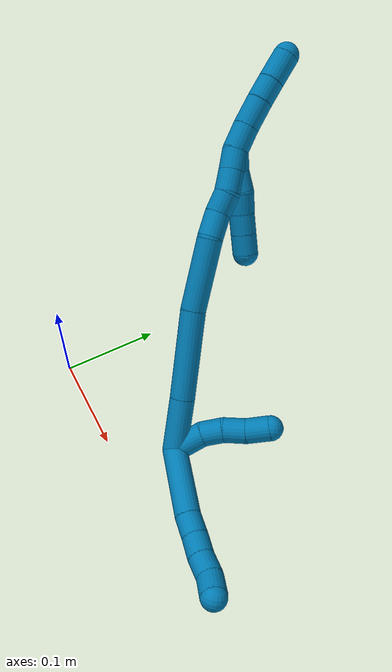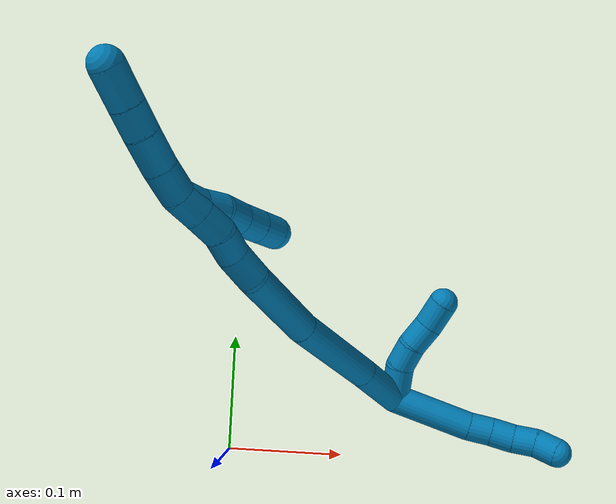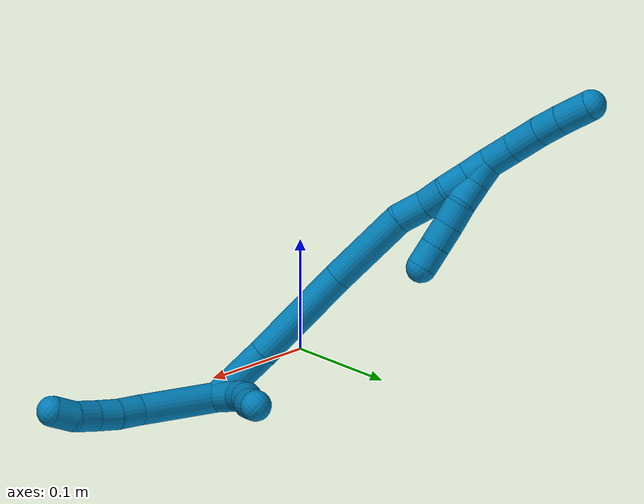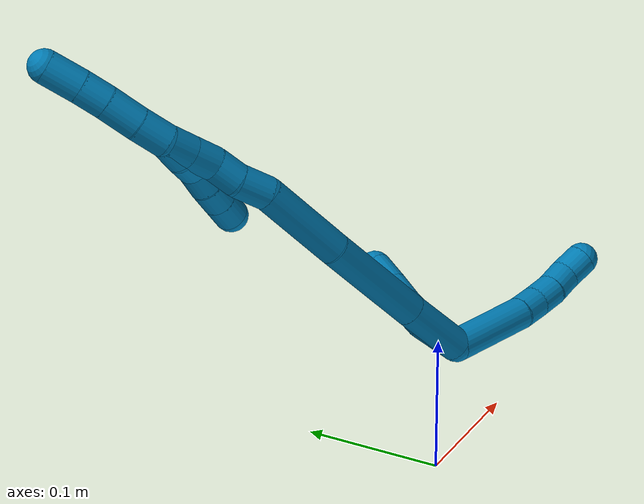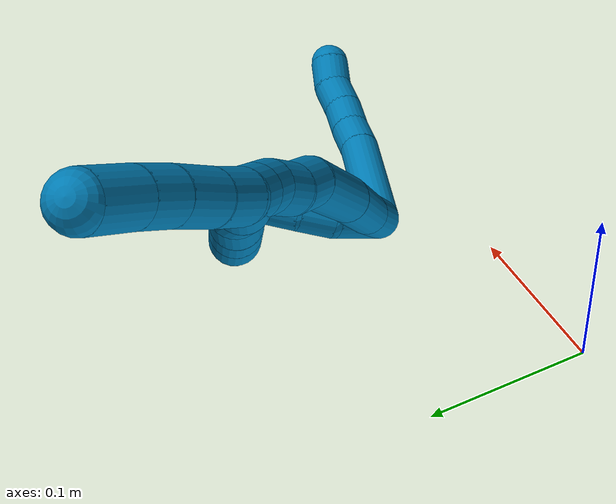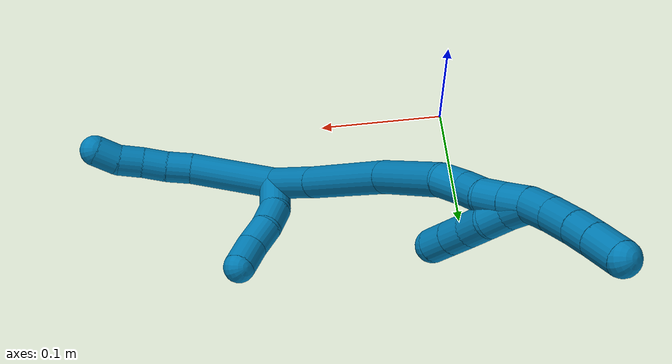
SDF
<sdf version="1.7">
 <world name="default">
  <model name="9">
   <static>0</static>
   <link name="9">
    <collision name="collision-cylinder-e_1_2_8">
     <pose>0.013518 -0.023941 -0.021047 2.29194 0.401088 0.844636</pose>
     <geometry><cylinder><radius>0.0125</radius><length>0.06925</length></cylinder></geometry>
     <surface>
      <friction><ode><mu>1.16</mu><mu2>1.16</mu2><slip1>0</slip1><slip2>0</slip2></ode></friction>
      <contact><ode><kp>1e+06</kp><kd>1</kd><max_vel>0</max_vel><min_depth>0.001</min_depth></ode></contact>
     </surface>
    </collision>
    <visual name="visual-cylinder-e_1_2_8">
     <pose>0.013518 -0.023941 -0.021047 2.29194 0.401088 0.844636</pose>
     <geometry><cylinder><radius>0.0125</radius><length>0.06925</length></cylinder></geometry>
     <material><ambient>0 0.490196 0.709804 1</ambient></material>
    </visual>
    <collision name="collision-cylinder-e_2_8_9">
     <pose>0.032206 -0.054679 -0.04766 2.25711 0.531904 1.04408</pose>
     <geometry><cylinder><radius>0.0125</radius><length>0.020387</length></cylinder></geometry>
     <surface>
      <friction><ode><mu>1.16</mu><mu2>1.16</mu2><slip1>0</slip1><slip2>0</slip2></ode></friction>
      <contact><ode><kp>1e+06</kp><kd>1</kd><max_vel>0</max_vel><min_depth>0.001</min_depth></ode></contact>
     </surface>
    </collision>
    <visual name="visual-cylinder-e_2_8_9">
     <pose>0.032206 -0.054679 -0.04766 2.25711 0.531904 1.04408</pose>
     <geometry><cylinder><radius>0.0125</radius><length>0.020387</length></cylinder></geometry>
     <material><ambient>0 0.490196 0.709804 1</ambient></material>
    </visual>
    <collision name="collision-cylinder-e_3_9_10">
     <pose>0.041981 -0.069013 -0.058129 2.14735 0.473294 0.836517</pose>
     <geometry><cylinder><radius>0.0125</radius><length>0.020204</length></cylinder></geometry>
     <surface>
      <friction><ode><mu>1.16</mu><mu2>1.16</mu2><slip1>0</slip1><slip2>0</slip2></ode></friction>
      <contact><ode><kp>1e+06</kp><kd>1</kd><max_vel>0</max_vel><min_depth>0.001</min_depth></ode></contact>
     </surface>
    </collision>
    <visual name="visual-cylinder-e_3_9_10">
     <pose>0.041981 -0.069013 -0.058129 2.14735 0.473294 0.836517</pose>
     <geometry><cylinder><radius>0.0125</radius><length>0.020204</length></cylinder></geometry>
     <material><ambient>0 0.490196 0.709804 1</ambient></material>
    </visual>
    <collision name="collision-cylinder-e_4_10_11">
     <pose>0.052157 -0.083956 -0.06692 2.0544 0.587559 0.928273</pose>
     <geometry><cylinder><radius>0.0125</radius><length>0.0201</length></cylinder></geometry>
     <surface>
      <friction><ode><mu>1.16</mu><mu2>1.16</mu2><slip1>0</slip1><slip2>0</slip2></ode></friction>
      <contact><ode><kp>1e+06</kp><kd>1</kd><max_vel>0</max_vel><min_depth>0.001</min_depth></ode></contact>
     </surface>
    </collision>
    <visual name="visual-cylinder-e_4_10_11">
     <pose>0.052157 -0.083956 -0.06692 2.0544 0.587559 0.928273</pose>
     <geometry><cylinder><radius>0.0125</radius><length>0.0201</length></cylinder></geometry>
     <material><ambient>0 0.490196 0.709804 1</ambient></material>
    </visual>
    <collision name="collision-cylinder-e_5_11_6">
     <pose>0.061002 -0.100369 -0.073765 1.88788 0.332542 0.455357</pose>
     <geometry><cylinder><radius>0.0125</radius><length>0.02006</length></cylinder></geometry>
     <surface>
      <friction><ode><mu>1.16</mu><mu2>1.16</mu2><slip1>0</slip1><slip2>0</slip2></ode></friction>
      <contact><ode><kp>1e+06</kp><kd>1</kd><max_vel>0</max_vel><min_depth>0.001</min_depth></ode></contact>
     </surface>
    </collision>
    <visual name="visual-cylinder-e_5_11_6">
     <pose>0.061002 -0.100369 -0.073765 1.88788 0.332542 0.455357</pose>
     <geometry><cylinder><radius>0.0125</radius><length>0.02006</length></cylinder></geometry>
     <material><ambient>0 0.490196 0.709804 1</ambient></material>
    </visual>
    <collision name="collision-cylinder-e_1_2_12">
     <pose>0.012222 0.003074 0.009548 -0.311501 0.883584 -0.148262</pose>
     <geometry><cylinder><radius>0.0125</radius><length>0.031622</length></cylinder></geometry>
     <surface>
      <friction><ode><mu>1.16</mu><mu2>1.16</mu2><slip1>0</slip1><slip2>0</slip2></ode></friction>
      <contact><ode><kp>1e+06</kp><kd>1</kd><max_vel>0</max_vel><min_depth>0.001</min_depth></ode></contact>
     </surface>
    </collision>
    <visual name="visual-cylinder-e_1_2_12">
     <pose>0.012222 0.003074 0.009548 -0.311501 0.883584 -0.148262</pose>
     <geometry><cylinder><radius>0.0125</radius><length>0.031622</length></cylinder></geometry>
     <material><ambient>0 0.490196 0.709804 1</ambient></material>
    </visual>
    <collision name="collision-cylinder-e_2_12_13">
     <pose>0.034568 0.00603 0.023377 0.027697 1.17051 0.018355</pose>
     <geometry><cylinder><radius>0.0125</radius><length>0.021986</length></cylinder></geometry>
     <surface>
      <friction><ode><mu>1.16</mu><mu2>1.16</mu2><slip1>0</slip1><slip2>0</slip2></ode></friction>
      <contact><ode><kp>1e+06</kp><kd>1</kd><max_vel>0</max_vel><min_depth>0.001</min_depth></ode></contact>
     </surface>
    </collision>
    <visual name="visual-cylinder-e_2_12_13">
     <pose>0.034568 0.00603 0.023377 0.027697 1.17051 0.018355</pose>
     <geometry><cylinder><radius>0.0125</radius><length>0.021986</length></cylinder></geometry>
     <material><ambient>0 0.490196 0.709804 1</ambient></material>
    </visual>
    <collision name="collision-cylinder-e_3_13_14">
     <pose>0.05577 0.005417 0.029515 0.260273 1.39915 0.219398</pose>
     <geometry><cylinder><radius>0.0125</radius><length>0.022486</length></cylinder></geometry>
     <surface>
      <friction><ode><mu>1.16</mu><mu2>1.16</mu2><slip1>0</slip1><slip2>0</slip2></ode></friction>
      <contact><ode><kp>1e+06</kp><kd>1</kd><max_vel>0</max_vel><min_depth>0.001</min_depth></ode></contact>
     </surface>
    </collision>
    <visual name="visual-cylinder-e_3_13_14">
     <pose>0.05577 0.005417 0.029515 0.260273 1.39915 0.219398</pose>
     <geometry><cylinder><radius>0.0125</radius><length>0.022486</length></cylinder></geometry>
     <material><ambient>0 0.490196 0.709804 1</ambient></material>
    </visual>
    <collision name="collision-cylinder-e_4_14_5">
     <pose>0.078097 0.004425 0.035382 0.123528 1.22587 0.086933</pose>
     <geometry><cylinder><radius>0.0125</radius><length>0.023906</length></cylinder></geometry>
     <surface>
      <friction><ode><mu>1.16</mu><mu2>1.16</mu2><slip1>0</slip1><slip2>0</slip2></ode></friction>
      <contact><ode><kp>1e+06</kp><kd>1</kd><max_vel>0</max_vel><min_depth>0.001</min_depth></ode></contact>
     </surface>
    </collision>
    <visual name="visual-cylinder-e_4_14_5">
     <pose>0.078097 0.004425 0.035382 0.123528 1.22587 0.086933</pose>
     <geometry><cylinder><radius>0.0125</radius><length>0.023906</length></cylinder></geometry>
     <material><ambient>0 0.490196 0.709804 1</ambient></material>
    </visual>
    <collision name="collision-cylinder-e_1_2_15">
     <pose>-0.000173 0.001644 0.026925 -0.060985 -0.006398 0.000195</pose>
     <geometry><cylinder><radius>0.0125</radius><length>0.053952</length></cylinder></geometry>
     <surface>
      <friction><ode><mu>1.16</mu><mu2>1.16</mu2><slip1>0</slip1><slip2>0</slip2></ode></friction>
      <contact><ode><kp>1e+06</kp><kd>1</kd><max_vel>0</max_vel><min_depth>0.001</min_depth></ode></contact>
     </surface>
    </collision>
    <visual name="visual-cylinder-e_1_2_15">
     <pose>-0.000173 0.001644 0.026925 -0.060985 -0.006398 0.000195</pose>
     <geometry><cylinder><radius>0.0125</radius><length>0.053952</length></cylinder></geometry>
     <material><ambient>0 0.490196 0.709804 1</ambient></material>
    </visual>
    <collision name="collision-cylinder-e_2_15_16">
     <pose>-0.001487 0.004977 0.09791 -0.038316 -0.025885 0.000496</pose>
     <geometry><cylinder><radius>0.0125</radius><length>0.088213</length></cylinder></geometry>
     <surface>
      <friction><ode><mu>1.16</mu><mu2>1.16</mu2><slip1>0</slip1><slip2>0</slip2></ode></friction>
      <contact><ode><kp>1e+06</kp><kd>1</kd><max_vel>0</max_vel><min_depth>0.001</min_depth></ode></contact>
     </surface>
    </collision>
    <visual name="visual-cylinder-e_2_15_16">
     <pose>-0.001487 0.004977 0.09791 -0.038316 -0.025885 0.000496</pose>
     <geometry><cylinder><radius>0.0125</radius><length>0.088213</length></cylinder></geometry>
     <material><ambient>0 0.490196 0.709804 1</ambient></material>
    </visual>
    <collision name="collision-cylinder-e_3_16_17">
     <pose>0.000244 0.007967 0.177054 -0.037068 0.081624 -0.001514</pose>
     <geometry><cylinder><radius>0.0125</radius><length>0.070454</length></cylinder></geometry>
     <surface>
      <friction><ode><mu>1.16</mu><mu2>1.16</mu2><slip1>0</slip1><slip2>0</slip2></ode></friction>
      <contact><ode><kp>1e+06</kp><kd>1</kd><max_vel>0</max_vel><min_depth>0.001</min_depth></ode></contact>
     </surface>
    </collision>
    <visual name="visual-cylinder-e_3_16_17">
     <pose>0.000244 0.007967 0.177054 -0.037068 0.081624 -0.001514</pose>
     <geometry><cylinder><radius>0.0125</radius><length>0.070454</length></cylinder></geometry>
     <material><ambient>0 0.490196 0.709804 1</ambient></material>
    </visual>
    <collision name="collision-cylinder-e_4_17_18">
     <pose>0.004628 0.013026 0.223978 -0.307319 0.121135 -0.018784</pose>
     <geometry><cylinder><radius>0.0125</radius><length>0.025025</length></cylinder></geometry>
     <surface>
      <friction><ode><mu>1.16</mu><mu2>1.16</mu2><slip1>0</slip1><slip2>0</slip2></ode></friction>
      <contact><ode><kp>1e+06</kp><kd>1</kd><max_vel>0</max_vel><min_depth>0.001</min_depth></ode></contact>
     </surface>
    </collision>
    <visual name="visual-cylinder-e_4_17_18">
     <pose>0.004628 0.013026 0.223978 -0.307319 0.121135 -0.018784</pose>
     <geometry><cylinder><radius>0.0125</radius><length>0.025025</length></cylinder></geometry>
     <material><ambient>0 0.490196 0.709804 1</ambient></material>
    </visual>
    <collision name="collision-cylinder-e_5_18_19">
     <pose>0.008951 0.018037 0.24575 -0.125536 0.273709 -0.017311</pose>
     <geometry><cylinder><radius>0.0125</radius><length>0.020797</length></cylinder></geometry>
     <surface>
      <friction><ode><mu>1.16</mu><mu2>1.16</mu2><slip1>0</slip1><slip2>0</slip2></ode></friction>
      <contact><ode><kp>1e+06</kp><kd>1</kd><max_vel>0</max_vel><min_depth>0.001</min_depth></ode></contact>
     </surface>
    </collision>
    <visual name="visual-cylinder-e_5_18_19">
     <pose>0.008951 0.018037 0.24575 -0.125536 0.273709 -0.017311</pose>
     <geometry><cylinder><radius>0.0125</radius><length>0.020797</length></cylinder></geometry>
     <material><ambient>0 0.490196 0.709804 1</ambient></material>
    </visual>
    <collision name="collision-cylinder-e_6_19_20">
     <pose>0.012055 0.021998 0.266024 -0.2561 0.027405 -0.003529</pose>
     <geometry><cylinder><radius>0.0125</radius><length>0.021388</length></cylinder></geometry>
     <surface>
      <friction><ode><mu>1.16</mu><mu2>1.16</mu2><slip1>0</slip1><slip2>0</slip2></ode></friction>
      <contact><ode><kp>1e+06</kp><kd>1</kd><max_vel>0</max_vel><min_depth>0.001</min_depth></ode></contact>
     </surface>
    </collision>
    <visual name="visual-cylinder-e_6_19_20">
     <pose>0.012055 0.021998 0.266024 -0.2561 0.027405 -0.003529</pose>
     <geometry><cylinder><radius>0.0125</radius><length>0.021388</length></cylinder></geometry>
     <material><ambient>0 0.490196 0.709804 1</ambient></material>
    </visual>
    <collision name="collision-cylinder-e_7_20_1">
     <pose>0.0124 0.027172 0.286145 -0.247045 0.005246 -0.000651</pose>
     <geometry><cylinder><radius>0.0125</radius><length>0.020172</length></cylinder></geometry>
     <surface>
      <friction><ode><mu>1.16</mu><mu2>1.16</mu2><slip1>0</slip1><slip2>0</slip2></ode></friction>
      <contact><ode><kp>1e+06</kp><kd>1</kd><max_vel>0</max_vel><min_depth>0.001</min_depth></ode></contact>
     </surface>
    </collision>
    <visual name="visual-cylinder-e_7_20_1">
     <pose>0.0124 0.027172 0.286145 -0.247045 0.005246 -0.000651</pose>
     <geometry><cylinder><radius>0.0125</radius><length>0.020172</length></cylinder></geometry>
     <material><ambient>0 0.490196 0.709804 1</ambient></material>
    </visual>
    <collision name="collision-cylinder-e_1_1_21">
     <pose>0.014311 0.030528 0.286139 -3.05091 0.186805 -2.23951</pose>
     <geometry><cylinder><radius>0.0125</radius><length>0.02</length></cylinder></geometry>
     <surface>
      <friction><ode><mu>1.16</mu><mu2>1.16</mu2><slip1>0</slip1><slip2>0</slip2></ode></friction>
      <contact><ode><kp>1e+06</kp><kd>1</kd><max_vel>0</max_vel><min_depth>0.001</min_depth></ode></contact>
     </surface>
    </collision>
    <visual name="visual-cylinder-e_1_1_21">
     <pose>0.014311 0.030528 0.286139 -3.05091 0.186805 -2.23951</pose>
     <geometry><cylinder><radius>0.0125</radius><length>0.02</length></cylinder></geometry>
     <material><ambient>0 0.490196 0.709804 1</ambient></material>
    </visual>
    <collision name="collision-cylinder-e_2_21_22">
     <pose>0.01996 0.031932 0.267114 -3.08602 0.388952 -2.86124</pose>
     <geometry><cylinder><radius>0.0125</radius><length>0.02</length></cylinder></geometry>
     <surface>
      <friction><ode><mu>1.16</mu><mu2>1.16</mu2><slip1>0</slip1><slip2>0</slip2></ode></friction>
      <contact><ode><kp>1e+06</kp><kd>1</kd><max_vel>0</max_vel><min_depth>0.001</min_depth></ode></contact>
     </surface>
    </collision>
    <visual name="visual-cylinder-e_2_21_22">
     <pose>0.01996 0.031932 0.267114 -3.08602 0.388952 -2.86124</pose>
     <geometry><cylinder><radius>0.0125</radius><length>0.02</length></cylinder></geometry>
     <material><ambient>0 0.490196 0.709804 1</ambient></material>
    </visual>
    <collision name="collision-cylinder-e_3_22_23">
     <pose>0.025409 0.034253 0.248181 -2.95729 0.166458 -1.46864</pose>
     <geometry><cylinder><radius>0.0125</radius><length>0.02</length></cylinder></geometry>
     <surface>
      <friction><ode><mu>1.16</mu><mu2>1.16</mu2><slip1>0</slip1><slip2>0</slip2></ode></friction>
      <contact><ode><kp>1e+06</kp><kd>1</kd><max_vel>0</max_vel><min_depth>0.001</min_depth></ode></contact>
     </surface>
    </collision>
    <visual name="visual-cylinder-e_3_22_23">
     <pose>0.025409 0.034253 0.248181 -2.95729 0.166458 -1.46864</pose>
     <geometry><cylinder><radius>0.0125</radius><length>0.02</length></cylinder></geometry>
     <material><ambient>0 0.490196 0.709804 1</ambient></material>
    </visual>
    <collision name="collision-cylinder-e_4_23_24">
     <pose>0.02939 0.037312 0.228841 -3.01259 0.234562 -2.13866</pose>
     <geometry><cylinder><radius>0.0125</radius><length>0.02</length></cylinder></geometry>
     <surface>
      <friction><ode><mu>1.16</mu><mu2>1.16</mu2><slip1>0</slip1><slip2>0</slip2></ode></friction>
      <contact><ode><kp>1e+06</kp><kd>1</kd><max_vel>0</max_vel><min_depth>0.001</min_depth></ode></contact>
     </surface>
    </collision>
    <visual name="visual-cylinder-e_4_23_24">
     <pose>0.02939 0.037312 0.228841 -3.01259 0.234562 -2.13866</pose>
     <geometry><cylinder><radius>0.0125</radius><length>0.02</length></cylinder></geometry>
     <material><ambient>0 0.490196 0.709804 1</ambient></material>
    </visual>
    <collision name="collision-cylinder-e_5_24_4">
     <pose>0.034067 0.039809 0.209556 -3.01306 0.23746 -2.1521</pose>
     <geometry><cylinder><radius>0.0125</radius><length>0.02</length></cylinder></geometry>
     <surface>
      <friction><ode><mu>1.16</mu><mu2>1.16</mu2><slip1>0</slip1><slip2>0</slip2></ode></friction>
      <contact><ode><kp>1e+06</kp><kd>1</kd><max_vel>0</max_vel><min_depth>0.001</min_depth></ode></contact>
     </surface>
    </collision>
    <visual name="visual-cylinder-e_5_24_4">
     <pose>0.034067 0.039809 0.209556 -3.01306 0.23746 -2.1521</pose>
     <geometry><cylinder><radius>0.0125</radius><length>0.02</length></cylinder></geometry>
     <material><ambient>0 0.490196 0.709804 1</ambient></material>
    </visual>
    <collision name="collision-cylinder-e_1_1_25">
     <pose>0.015588 0.03194 0.307484 -0.196546 0.259949 -0.025772</pose>
     <geometry><cylinder><radius>0.0125</radius><length>0.024393</length></cylinder></geometry>
     <surface>
      <friction><ode><mu>1.16</mu><mu2>1.16</mu2><slip1>0</slip1><slip2>0</slip2></ode></friction>
      <contact><ode><kp>1e+06</kp><kd>1</kd><max_vel>0</max_vel><min_depth>0.001</min_depth></ode></contact>
     </surface>
    </collision>
    <visual name="visual-cylinder-e_1_1_25">
     <pose>0.015588 0.03194 0.307484 -0.196546 0.259949 -0.025772</pose>
     <geometry><cylinder><radius>0.0125</radius><length>0.024393</length></cylinder></geometry>
     <material><ambient>0 0.490196 0.709804 1</ambient></material>
    </visual>
    <collision name="collision-cylinder-e_2_25_26">
     <pose>0.023053 0.03637 0.33156 -0.168428 0.328653 -0.027993</pose>
     <geometry><cylinder><radius>0.0125</radius><length>0.026827</length></cylinder></geometry>
     <surface>
      <friction><ode><mu>1.16</mu><mu2>1.16</mu2><slip1>0</slip1><slip2>0</slip2></ode></friction>
      <contact><ode><kp>1e+06</kp><kd>1</kd><max_vel>0</max_vel><min_depth>0.001</min_depth></ode></contact>
     </surface>
    </collision>
    <visual name="visual-cylinder-e_2_25_26">
     <pose>0.023053 0.03637 0.33156 -0.168428 0.328653 -0.027993</pose>
     <geometry><cylinder><radius>0.0125</radius><length>0.026827</length></cylinder></geometry>
     <material><ambient>0 0.490196 0.709804 1</ambient></material>
    </visual>
    <collision name="collision-cylinder-e_3_26_27">
     <pose>0.031058 0.040642 0.353721 -0.218679 0.356192 -0.039515</pose>
     <geometry><cylinder><radius>0.0125</radius><length>0.021082</length></cylinder></geometry>
     <surface>
      <friction><ode><mu>1.16</mu><mu2>1.16</mu2><slip1>0</slip1><slip2>0</slip2></ode></friction>
      <contact><ode><kp>1e+06</kp><kd>1</kd><max_vel>0</max_vel><min_depth>0.001</min_depth></ode></contact>
     </surface>
    </collision>
    <visual name="visual-cylinder-e_3_26_27">
     <pose>0.031058 0.040642 0.353721 -0.218679 0.356192 -0.039515</pose>
     <geometry><cylinder><radius>0.0125</radius><length>0.021082</length></cylinder></geometry>
     <material><ambient>0 0.490196 0.709804 1</ambient></material>
    </visual>
    <collision name="collision-cylinder-e_4_27_3">
     <pose>0.03965 0.046097 0.375881 -0.258682 0.362925 -0.047721</pose>
     <geometry><cylinder><radius>0.0125</radius><length>0.027697</length></cylinder></geometry>
     <surface>
      <friction><ode><mu>1.16</mu><mu2>1.16</mu2><slip1>0</slip1><slip2>0</slip2></ode></friction>
      <contact><ode><kp>1e+06</kp><kd>1</kd><max_vel>0</max_vel><min_depth>0.001</min_depth></ode></contact>
     </surface>
    </collision>
    <visual name="visual-cylinder-e_4_27_3">
     <pose>0.03965 0.046097 0.375881 -0.258682 0.362925 -0.047721</pose>
     <geometry><cylinder><radius>0.0125</radius><length>0.027697</length></cylinder></geometry>
     <material><ambient>0 0.490196 0.709804 1</ambient></material>
    </visual>
    <collision name="collision-sphere-3">
     <pose>0.044567 0.049409 0.388396 0 -0 0</pose>
     <geometry><sphere><radius>0.0125</radius></sphere></geometry>
     <surface>
      <friction><ode><mu>1.16</mu><mu2>1.16</mu2><slip1>0</slip1><slip2>0</slip2></ode></friction>
      <contact><ode><kp>1e+06</kp><kd>1</kd><max_vel>0</max_vel><min_depth>0.001</min_depth></ode></contact>
     </surface>
    </collision>
    <visual name="visual-sphere-3">
     <pose>0.044567 0.049409 0.388396 0 -0 0</pose>
     <geometry><sphere><radius>0.0125</radius></sphere></geometry>
     <material><ambient>0 0.490196 0.709804 1</ambient></material>
    </visual>
    <collision name="collision-sphere-27">
     <pose>0.034734 0.042785 0.363365 0 -0 0</pose>
     <geometry><sphere><radius>0.0125</radius></sphere></geometry>
     <surface>
      <friction><ode><mu>1.16</mu><mu2>1.16</mu2><slip1>0</slip1><slip2>0</slip2></ode></friction>
      <contact><ode><kp>1e+06</kp><kd>1</kd><max_vel>0</max_vel><min_depth>0.001</min_depth></ode></contact>
     </surface>
    </collision>
    <visual name="visual-sphere-27">
     <pose>0.034734 0.042785 0.363365 0 -0 0</pose>
     <geometry><sphere><radius>0.0125</radius></sphere></geometry>
     <material><ambient>0 0.490196 0.709804 1</ambient></material>
    </visual>
    <collision name="collision-sphere-26">
     <pose>0.027382 0.038499 0.344076 0 -0 0</pose>
     <geometry><sphere><radius>0.0125</radius></sphere></geometry>
     <surface>
      <friction><ode><mu>1.16</mu><mu2>1.16</mu2><slip1>0</slip1><slip2>0</slip2></ode></friction>
      <contact><ode><kp>1e+06</kp><kd>1</kd><max_vel>0</max_vel><min_depth>0.001</min_depth></ode></contact>
     </surface>
    </collision>
    <visual name="visual-sphere-26">
     <pose>0.027382 0.038499 0.344076 0 -0 0</pose>
     <geometry><sphere><radius>0.0125</radius></sphere></geometry>
     <material><ambient>0 0.490196 0.709804 1</ambient></material>
    </visual>
    <collision name="collision-sphere-25">
     <pose>0.018723 0.034242 0.319044 0 -0 0</pose>
     <geometry><sphere><radius>0.0125</radius></sphere></geometry>
     <surface>
      <friction><ode><mu>1.16</mu><mu2>1.16</mu2><slip1>0</slip1><slip2>0</slip2></ode></friction>
      <contact><ode><kp>1e+06</kp><kd>1</kd><max_vel>0</max_vel><min_depth>0.001</min_depth></ode></contact>
     </surface>
    </collision>
    <visual name="visual-sphere-25">
     <pose>0.018723 0.034242 0.319044 0 -0 0</pose>
     <geometry><sphere><radius>0.0125</radius></sphere></geometry>
     <material><ambient>0 0.490196 0.709804 1</ambient></material>
    </visual>
    <collision name="collision-sphere-4">
     <pose>0.036419 0.041055 0.199917 0 -0 0</pose>
     <geometry><sphere><radius>0.0125</radius></sphere></geometry>
     <surface>
      <friction><ode><mu>1.16</mu><mu2>1.16</mu2><slip1>0</slip1><slip2>0</slip2></ode></friction>
      <contact><ode><kp>1e+06</kp><kd>1</kd><max_vel>0</max_vel><min_depth>0.001</min_depth></ode></contact>
     </surface>
    </collision>
    <visual name="visual-sphere-4">
     <pose>0.036419 0.041055 0.199917 0 -0 0</pose>
     <geometry><sphere><radius>0.0125</radius></sphere></geometry>
     <material><ambient>0 0.490196 0.709804 1</ambient></material>
    </visual>
    <collision name="collision-sphere-24">
     <pose>0.031714 0.038563 0.219195 0 -0 0</pose>
     <geometry><sphere><radius>0.0125</radius></sphere></geometry>
     <surface>
      <friction><ode><mu>1.16</mu><mu2>1.16</mu2><slip1>0</slip1><slip2>0</slip2></ode></friction>
      <contact><ode><kp>1e+06</kp><kd>1</kd><max_vel>0</max_vel><min_depth>0.001</min_depth></ode></contact>
     </surface>
    </collision>
    <visual name="visual-sphere-24">
     <pose>0.031714 0.038563 0.219195 0 -0 0</pose>
     <geometry><sphere><radius>0.0125</radius></sphere></geometry>
     <material><ambient>0 0.490196 0.709804 1</ambient></material>
    </visual>
    <collision name="collision-sphere-23">
     <pose>0.027066 0.03606 0.238486 0 -0 0</pose>
     <geometry><sphere><radius>0.0125</radius></sphere></geometry>
     <surface>
      <friction><ode><mu>1.16</mu><mu2>1.16</mu2><slip1>0</slip1><slip2>0</slip2></ode></friction>
      <contact><ode><kp>1e+06</kp><kd>1</kd><max_vel>0</max_vel><min_depth>0.001</min_depth></ode></contact>
     </surface>
    </collision>
    <visual name="visual-sphere-23">
     <pose>0.027066 0.03606 0.238486 0 -0 0</pose>
     <geometry><sphere><radius>0.0125</radius></sphere></geometry>
     <material><ambient>0 0.490196 0.709804 1</ambient></material>
    </visual>
    <collision name="collision-sphere-22">
     <pose>0.023752 0.032446 0.257876 0 -0 0</pose>
     <geometry><sphere><radius>0.0125</radius></sphere></geometry>
     <surface>
      <friction><ode><mu>1.16</mu><mu2>1.16</mu2><slip1>0</slip1><slip2>0</slip2></ode></friction>
      <contact><ode><kp>1e+06</kp><kd>1</kd><max_vel>0</max_vel><min_depth>0.001</min_depth></ode></contact>
     </surface>
    </collision>
    <visual name="visual-sphere-22">
     <pose>0.023752 0.032446 0.257876 0 -0 0</pose>
     <geometry><sphere><radius>0.0125</radius></sphere></geometry>
     <material><ambient>0 0.490196 0.709804 1</ambient></material>
    </visual>
    <collision name="collision-sphere-21">
     <pose>0.016168 0.031418 0.276353 0 -0 0</pose>
     <geometry><sphere><radius>0.0125</radius></sphere></geometry>
     <surface>
      <friction><ode><mu>1.16</mu><mu2>1.16</mu2><slip1>0</slip1><slip2>0</slip2></ode></friction>
      <contact><ode><kp>1e+06</kp><kd>1</kd><max_vel>0</max_vel><min_depth>0.001</min_depth></ode></contact>
     </surface>
    </collision>
    <visual name="visual-sphere-21">
     <pose>0.016168 0.031418 0.276353 0 -0 0</pose>
     <geometry><sphere><radius>0.0125</radius></sphere></geometry>
     <material><ambient>0 0.490196 0.709804 1</ambient></material>
    </visual>
    <collision name="collision-sphere-1">
     <pose>0.012453 0.029639 0.295925 0 -0 0</pose>
     <geometry><sphere><radius>0.0125</radius></sphere></geometry>
     <surface>
      <friction><ode><mu>1.16</mu><mu2>1.16</mu2><slip1>0</slip1><slip2>0</slip2></ode></friction>
      <contact><ode><kp>1e+06</kp><kd>1</kd><max_vel>0</max_vel><min_depth>0.001</min_depth></ode></contact>
     </surface>
    </collision>
    <visual name="visual-sphere-1">
     <pose>0.012453 0.029639 0.295925 0 -0 0</pose>
     <geometry><sphere><radius>0.0125</radius></sphere></geometry>
     <material><ambient>0 0.490196 0.709804 1</ambient></material>
    </visual>
    <collision name="collision-sphere-6">
     <pose>0.064276 -0.109377 -0.076721 0 -0 0</pose>
     <geometry><sphere><radius>0.0125</radius></sphere></geometry>
     <surface>
      <friction><ode><mu>1.16</mu><mu2>1.16</mu2><slip1>0</slip1><slip2>0</slip2></ode></friction>
      <contact><ode><kp>1e+06</kp><kd>1</kd><max_vel>0</max_vel><min_depth>0.001</min_depth></ode></contact>
     </surface>
    </collision>
    <visual name="visual-sphere-6">
     <pose>0.064276 -0.109377 -0.076721 0 -0 0</pose>
     <geometry><sphere><radius>0.0125</radius></sphere></geometry>
     <material><ambient>0 0.490196 0.709804 1</ambient></material>
    </visual>
    <collision name="collision-sphere-11">
     <pose>0.057728 -0.091361 -0.070809 0 -0 0</pose>
     <geometry><sphere><radius>0.0125</radius></sphere></geometry>
     <surface>
      <friction><ode><mu>1.16</mu><mu2>1.16</mu2><slip1>0</slip1><slip2>0</slip2></ode></friction>
      <contact><ode><kp>1e+06</kp><kd>1</kd><max_vel>0</max_vel><min_depth>0.001</min_depth></ode></contact>
     </surface>
    </collision>
    <visual name="visual-sphere-11">
     <pose>0.057728 -0.091361 -0.070809 0 -0 0</pose>
     <geometry><sphere><radius>0.0125</radius></sphere></geometry>
     <material><ambient>0 0.490196 0.709804 1</ambient></material>
    </visual>
    <collision name="collision-sphere-10">
     <pose>0.046586 -0.076551 -0.06303 0 -0 0</pose>
     <geometry><sphere><radius>0.0125</radius></sphere></geometry>
     <surface>
      <friction><ode><mu>1.16</mu><mu2>1.16</mu2><slip1>0</slip1><slip2>0</slip2></ode></friction>
      <contact><ode><kp>1e+06</kp><kd>1</kd><max_vel>0</max_vel><min_depth>0.001</min_depth></ode></contact>
     </surface>
    </collision>
    <visual name="visual-sphere-10">
     <pose>0.046586 -0.076551 -0.06303 0 -0 0</pose>
     <geometry><sphere><radius>0.0125</radius></sphere></geometry>
     <material><ambient>0 0.490196 0.709804 1</ambient></material>
    </visual>
    <collision name="collision-sphere-9">
     <pose>0.037376 -0.061475 -0.053227 0 -0 0</pose>
     <geometry><sphere><radius>0.0125</radius></sphere></geometry>
     <surface>
      <friction><ode><mu>1.16</mu><mu2>1.16</mu2><slip1>0</slip1><slip2>0</slip2></ode></friction>
      <contact><ode><kp>1e+06</kp><kd>1</kd><max_vel>0</max_vel><min_depth>0.001</min_depth></ode></contact>
     </surface>
    </collision>
    <visual name="visual-sphere-9">
     <pose>0.037376 -0.061475 -0.053227 0 -0 0</pose>
     <geometry><sphere><radius>0.0125</radius></sphere></geometry>
     <material><ambient>0 0.490196 0.709804 1</ambient></material>
    </visual>
    <collision name="collision-sphere-2">
     <geometry><sphere><radius>0.0125</radius></sphere></geometry>
     <surface>
      <friction><ode><mu>1.16</mu><mu2>1.16</mu2><slip1>0</slip1><slip2>0</slip2></ode></friction>
      <contact><ode><kp>1e+06</kp><kd>1</kd><max_vel>0</max_vel><min_depth>0.001</min_depth></ode></contact>
     </surface>
    </collision>
    <visual name="visual-sphere-2">
     <geometry><sphere><radius>0.0125</radius></sphere></geometry>
     <material><ambient>0 0.490196 0.709804 1</ambient></material>
    </visual>
    <collision name="collision-sphere-19">
     <pose>0.011762 0.01929 0.255683 0 -0 0</pose>
     <geometry><sphere><radius>0.0125</radius></sphere></geometry>
     <surface>
      <friction><ode><mu>1.16</mu><mu2>1.16</mu2><slip1>0</slip1><slip2>0</slip2></ode></friction>
      <contact><ode><kp>1e+06</kp><kd>1</kd><max_vel>0</max_vel><min_depth>0.001</min_depth></ode></contact>
     </surface>
    </collision>
    <visual name="visual-sphere-19">
     <pose>0.011762 0.01929 0.255683 0 -0 0</pose>
     <geometry><sphere><radius>0.0125</radius></sphere></geometry>
     <material><ambient>0 0.490196 0.709804 1</ambient></material>
    </visual>
    <collision name="collision-sphere-8">
     <pose>0.027036 -0.047882 -0.042093 0 -0 0</pose>
     <geometry><sphere><radius>0.0125</radius></sphere></geometry>
     <surface>
      <friction><ode><mu>1.16</mu><mu2>1.16</mu2><slip1>0</slip1><slip2>0</slip2></ode></friction>
      <contact><ode><kp>1e+06</kp><kd>1</kd><max_vel>0</max_vel><min_depth>0.001</min_depth></ode></contact>
     </surface>
    </collision>
    <visual name="visual-sphere-8">
     <pose>0.027036 -0.047882 -0.042093 0 -0 0</pose>
     <geometry><sphere><radius>0.0125</radius></sphere></geometry>
     <material><ambient>0 0.490196 0.709804 1</ambient></material>
    </visual>
    <collision name="collision-sphere-12">
     <pose>0.024444 0.006148 0.019095 0 -0 0</pose>
     <geometry><sphere><radius>0.0125</radius></sphere></geometry>
     <surface>
      <friction><ode><mu>1.16</mu><mu2>1.16</mu2><slip1>0</slip1><slip2>0</slip2></ode></friction>
      <contact><ode><kp>1e+06</kp><kd>1</kd><max_vel>0</max_vel><min_depth>0.001</min_depth></ode></contact>
     </surface>
    </collision>
    <visual name="visual-sphere-12">
     <pose>0.024444 0.006148 0.019095 0 -0 0</pose>
     <geometry><sphere><radius>0.0125</radius></sphere></geometry>
     <material><ambient>0 0.490196 0.709804 1</ambient></material>
    </visual>
    <collision name="collision-sphere-13">
     <pose>0.044693 0.005911 0.027659 0 -0 0</pose>
     <geometry><sphere><radius>0.0125</radius></sphere></geometry>
     <surface>
      <friction><ode><mu>1.16</mu><mu2>1.16</mu2><slip1>0</slip1><slip2>0</slip2></ode></friction>
      <contact><ode><kp>1e+06</kp><kd>1</kd><max_vel>0</max_vel><min_depth>0.001</min_depth></ode></contact>
     </surface>
    </collision>
    <visual name="visual-sphere-13">
     <pose>0.044693 0.005911 0.027659 0 -0 0</pose>
     <geometry><sphere><radius>0.0125</radius></sphere></geometry>
     <material><ambient>0 0.490196 0.709804 1</ambient></material>
    </visual>
    <collision name="collision-sphere-14">
     <pose>0.066848 0.004923 0.031371 0 -0 0</pose>
     <geometry><sphere><radius>0.0125</radius></sphere></geometry>
     <surface>
      <friction><ode><mu>1.16</mu><mu2>1.16</mu2><slip1>0</slip1><slip2>0</slip2></ode></friction>
      <contact><ode><kp>1e+06</kp><kd>1</kd><max_vel>0</max_vel><min_depth>0.001</min_depth></ode></contact>
     </surface>
    </collision>
    <visual name="visual-sphere-14">
     <pose>0.066848 0.004923 0.031371 0 -0 0</pose>
     <geometry><sphere><radius>0.0125</radius></sphere></geometry>
     <material><ambient>0 0.490196 0.709804 1</ambient></material>
    </visual>
    <collision name="collision-sphere-5">
     <pose>0.089346 0.003927 0.039392 0 -0 0</pose>
     <geometry><sphere><radius>0.0125</radius></sphere></geometry>
     <surface>
      <friction><ode><mu>1.16</mu><mu2>1.16</mu2><slip1>0</slip1><slip2>0</slip2></ode></friction>
      <contact><ode><kp>1e+06</kp><kd>1</kd><max_vel>0</max_vel><min_depth>0.001</min_depth></ode></contact>
     </surface>
    </collision>
    <visual name="visual-sphere-5">
     <pose>0.089346 0.003927 0.039392 0 -0 0</pose>
     <geometry><sphere><radius>0.0125</radius></sphere></geometry>
     <material><ambient>0 0.490196 0.709804 1</ambient></material>
    </visual>
    <collision name="collision-sphere-15">
     <pose>-0.000345 0.003288 0.05385 0 -0 0</pose>
     <geometry><sphere><radius>0.0125</radius></sphere></geometry>
     <surface>
      <friction><ode><mu>1.16</mu><mu2>1.16</mu2><slip1>0</slip1><slip2>0</slip2></ode></friction>
      <contact><ode><kp>1e+06</kp><kd>1</kd><max_vel>0</max_vel><min_depth>0.001</min_depth></ode></contact>
     </surface>
    </collision>
    <visual name="visual-sphere-15">
     <pose>-0.000345 0.003288 0.05385 0 -0 0</pose>
     <geometry><sphere><radius>0.0125</radius></sphere></geometry>
     <material><ambient>0 0.490196 0.709804 1</ambient></material>
    </visual>
    <collision name="collision-sphere-16">
     <pose>-0.002628 0.006666 0.141969 0 -0 0</pose>
     <geometry><sphere><radius>0.0125</radius></sphere></geometry>
     <surface>
      <friction><ode><mu>1.16</mu><mu2>1.16</mu2><slip1>0</slip1><slip2>0</slip2></ode></friction>
      <contact><ode><kp>1e+06</kp><kd>1</kd><max_vel>0</max_vel><min_depth>0.001</min_depth></ode></contact>
     </surface>
    </collision>
    <visual name="visual-sphere-16">
     <pose>-0.002628 0.006666 0.141969 0 -0 0</pose>
     <geometry><sphere><radius>0.0125</radius></sphere></geometry>
     <material><ambient>0 0.490196 0.709804 1</ambient></material>
    </visual>
    <collision name="collision-sphere-17">
     <pose>0.003116 0.009268 0.21214 0 -0 0</pose>
     <geometry><sphere><radius>0.0125</radius></sphere></geometry>
     <surface>
      <friction><ode><mu>1.16</mu><mu2>1.16</mu2><slip1>0</slip1><slip2>0</slip2></ode></friction>
      <contact><ode><kp>1e+06</kp><kd>1</kd><max_vel>0</max_vel><min_depth>0.001</min_depth></ode></contact>
     </surface>
    </collision>
    <visual name="visual-sphere-17">
     <pose>0.003116 0.009268 0.21214 0 -0 0</pose>
     <geometry><sphere><radius>0.0125</radius></sphere></geometry>
     <material><ambient>0 0.490196 0.709804 1</ambient></material>
    </visual>
    <collision name="collision-sphere-18">
     <pose>0.00614 0.016783 0.235817 0 -0 0</pose>
     <geometry><sphere><radius>0.0125</radius></sphere></geometry>
     <surface>
      <friction><ode><mu>1.16</mu><mu2>1.16</mu2><slip1>0</slip1><slip2>0</slip2></ode></friction>
      <contact><ode><kp>1e+06</kp><kd>1</kd><max_vel>0</max_vel><min_depth>0.001</min_depth></ode></contact>
     </surface>
    </collision>
    <visual name="visual-sphere-18">
     <pose>0.00614 0.016783 0.235817 0 -0 0</pose>
     <geometry><sphere><radius>0.0125</radius></sphere></geometry>
     <material><ambient>0 0.490196 0.709804 1</ambient></material>
    </visual>
    <collision name="collision-sphere-20">
     <pose>0.012348 0.024706 0.276365 0 -0 0</pose>
     <geometry><sphere><radius>0.0125</radius></sphere></geometry>
     <surface>
      <friction><ode><mu>1.16</mu><mu2>1.16</mu2><slip1>0</slip1><slip2>0</slip2></ode></friction>
      <contact><ode><kp>1e+06</kp><kd>1</kd><max_vel>0</max_vel><min_depth>0.001</min_depth></ode></contact>
     </surface>
    </collision>
    <visual name="visual-sphere-20">
     <pose>0.012348 0.024706 0.276365 0 -0 0</pose>
     <geometry><sphere><radius>0.0125</radius></sphere></geometry>
     <material><ambient>0 0.490196 0.709804 1</ambient></material>
    </visual>
    <inertial>
     <pose>0.019842 0.003685 0.132931 0 -0 0</pose>
     <mass>0.75</mass>
     <inertia><ixx>0.000182</ixx><ixy>0</ixy><ixz>0</ixz><iyy>0.000145</iyy><iyz>0</iyz><izz>7e-06</izz></inertia>
    </inertial>
   </link>
   <pose>0.144698 0.05469 0.011717 -0.728421 -0.013892 0.86332</pose>
  </model>
 </world>
</sdf>
